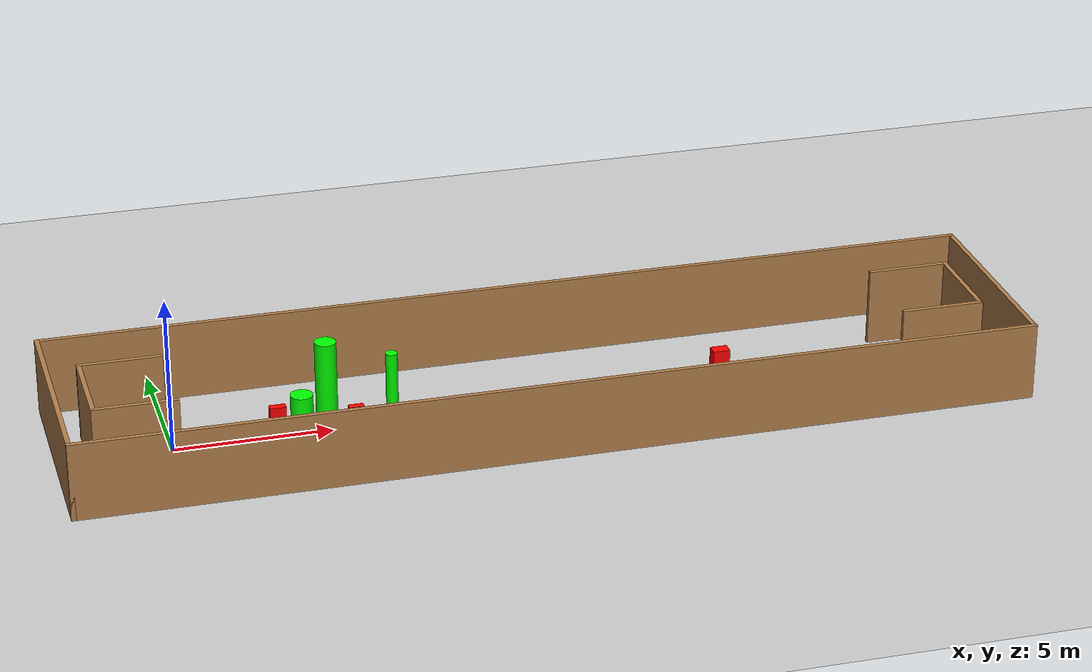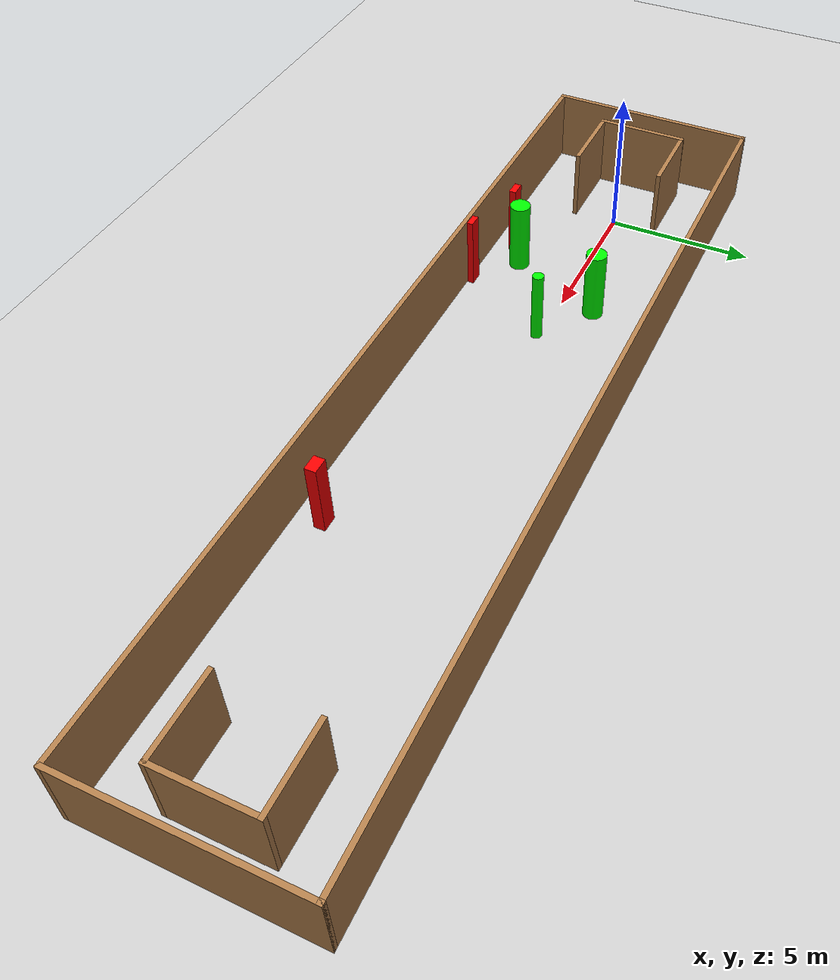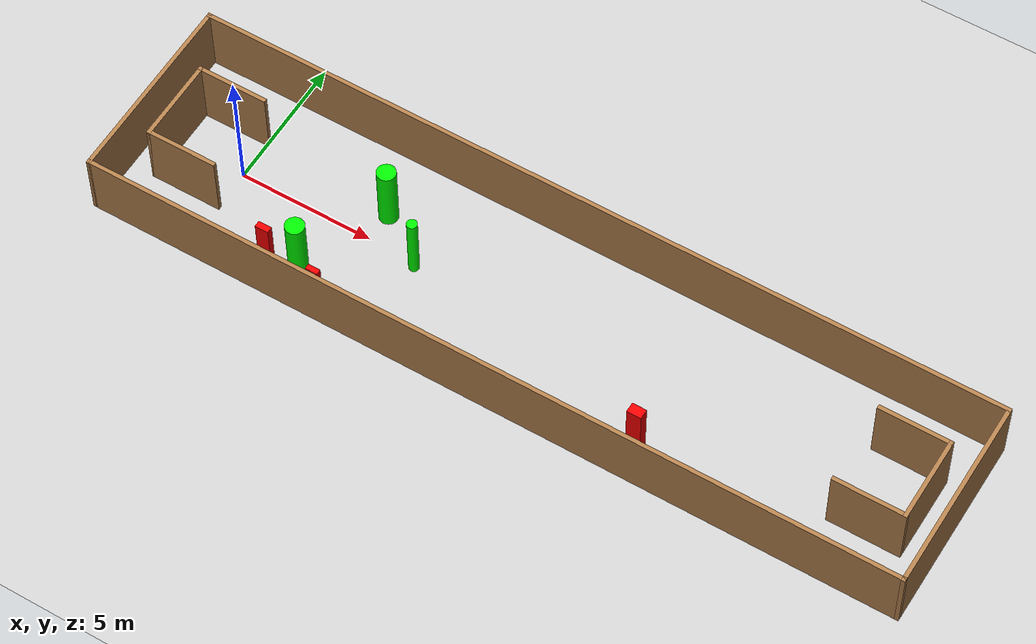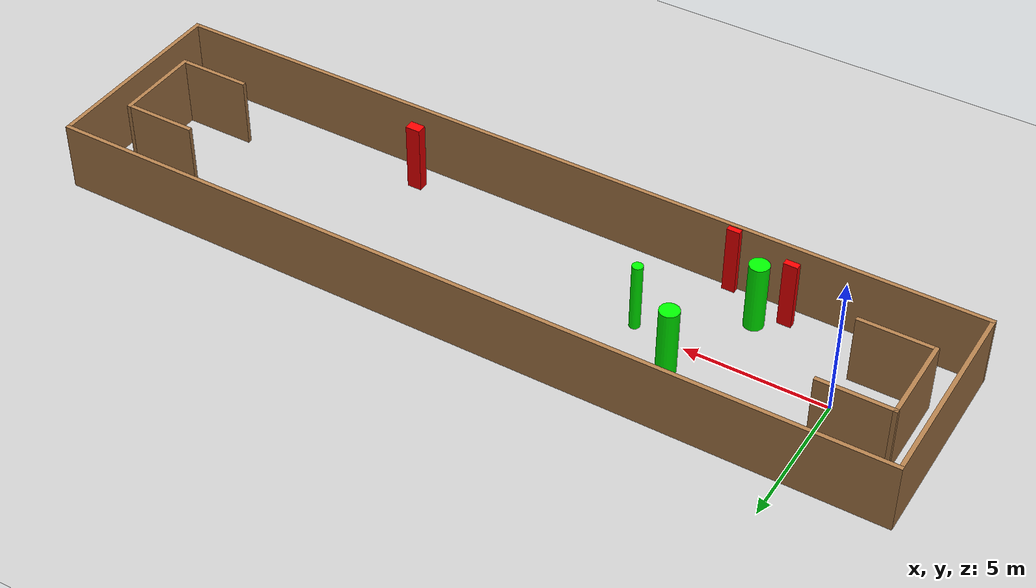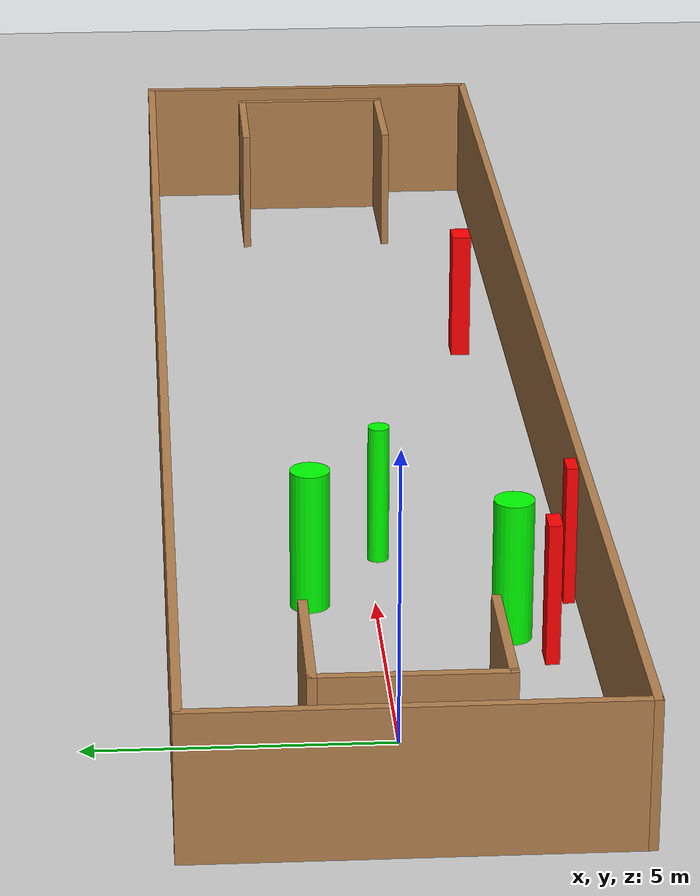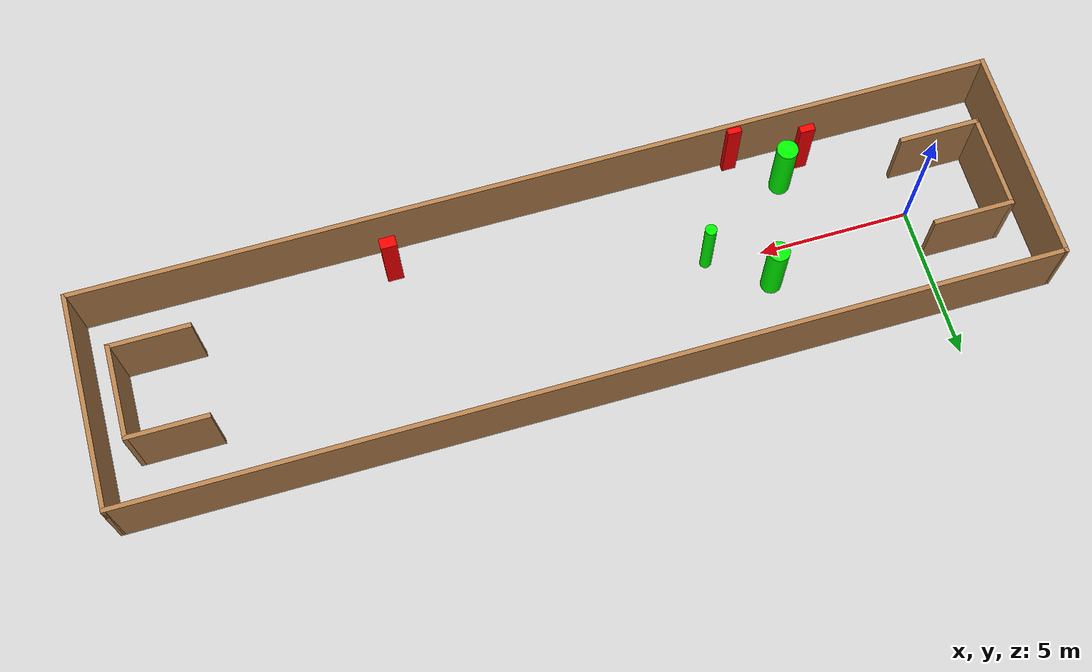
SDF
<sdf version="1.7">
 <world name="default">
  <light name="sun" type="directional">
   <pose>0 0 10 0 -0 0</pose>
   <diffuse>0.8 0.8 0.8 1</diffuse>
   <specular>0.2 0.2 0.2 1</specular>
   <attenuation>
    <range>1000</range>
    <constant>0.9</constant>
    <linear>0.01</linear>
    <quadratic>0.001</quadratic>
   </attenuation>
   <direction>-0.5 0.1 -0.9</direction>
   <spot><inner_angle>0</inner_angle><outer_angle>0</outer_angle><falloff>0</falloff></spot>
  </light>
  <model name="ground_plane">
   <static>1</static>
   <link name="link">
    <collision name="collision">
     <geometry><plane><normal>0 0 1</normal><size>100 100</size></plane></geometry>
     <surface>
      <contact><collide_bitmask>65535</collide_bitmask></contact>
      <friction><ode><mu>100</mu><mu2>50</mu2></ode></friction>
     </surface>
    </collision>
    <visual name="visual">
     <cast_shadows>0</cast_shadows>
     <geometry><plane><normal>0 0 1</normal><size>100 100</size></plane></geometry>
     <material>
      <script><uri>file://media/materials/scripts/gazebo.material</uri><name>Gazebo/Grey</name></script>
     </material>
    </visual>
   </link>
  </model>
  <gravity>0 0 -9.8</gravity>
  <magnetic_field>6e-06 2.3e-05 -4.2e-05</magnetic_field>
  <atmosphere type="adiabatic"/>
  <physics type="ode">
   <max_step_size>0.001</max_step_size>
   <real_time_factor>1</real_time_factor>
   <real_time_update_rate>1000</real_time_update_rate>
  </physics>
  <scene><ambient>0.4 0.4 0.4 1</ambient><background>0.7 0.7 0.7 1</background><shadows>1</shadows></scene>
  <spherical_coordinates>
   <surface_model>EARTH_WGS84</surface_model>
   <latitude_deg>0</latitude_deg>
   <longitude_deg>0</longitude_deg>
   <elevation>0</elevation>
   <heading_deg>0</heading_deg>
  </spherical_coordinates>
  <model name="my_base_walls">
   <link name="Wall_0">
    <collision name="Wall_0_Collision">
     <geometry><box><size>7.15 0.15 2.5</size></box></geometry>
     <pose>0 0 1.25 0 -0 0</pose>
    </collision>
    <visual name="Wall_0_Visual">
     <pose>0 0 1.25 0 -0 0</pose>
     <geometry><box><size>7.15 0.15 2.5</size></box></geometry>
     <material>
      <script><uri>file://media/materials/scripts/gazebo.material</uri><name>Gazebo/Wood</name></script>
      <ambient>1 1 1 1</ambient>
     </material>
     <meta><layer>0</layer></meta>
    </visual>
    <pose>-15 0 0 0 -0 1.5708</pose>
   </link>
   <link name="Wall_10">
    <collision name="Wall_10_Collision">
     <geometry><box><size>2.65 0.15 2.5</size></box></geometry>
     <pose>0 0 1.25 0 -0 0</pose>
    </collision>
    <visual name="Wall_10_Visual">
     <pose>0 0 1.25 0 -0 0</pose>
     <geometry><box><size>2.65 0.15 2.5</size></box></geometry>
     <material>
      <script><uri>file://media/materials/scripts/gazebo.material</uri><name>Gazebo/Wood</name></script>
      <ambient>1 1 1 1</ambient>
     </material>
     <meta><layer>0</layer></meta>
    </visual>
    <pose>-12.75 -1.5 0 0 -0 0</pose>
   </link>
   <link name="Wall_12">
    <collision name="Wall_12_Collision">
     <geometry><box><size>2.65 0.15 2.5</size></box></geometry>
     <pose>0 0 1.25 0 -0 0</pose>
    </collision>
    <visual name="Wall_12_Visual">
     <pose>0 0 1.25 0 -0 0</pose>
     <geometry><box><size>2.65 0.15 2.5</size></box></geometry>
     <material>
      <script><uri>file://media/materials/scripts/gazebo.material</uri><name>Gazebo/Wood</name></script>
      <ambient>1 1 1 1</ambient>
     </material>
     <meta><layer>0</layer></meta>
    </visual>
    <pose>-12.75 1.5 0 0 -0 0</pose>
   </link>
   <link name="Wall_14">
    <collision name="Wall_14_Collision">
     <geometry><box><size>3.15 0.15 2.5</size></box></geometry>
     <pose>0 0 1.25 0 -0 0</pose>
    </collision>
    <visual name="Wall_14_Visual">
     <pose>0 0 1.25 0 -0 0</pose>
     <geometry><box><size>3.15 0.15 2.5</size></box></geometry>
     <material>
      <script><uri>file://media/materials/scripts/gazebo.material</uri><name>Gazebo/Wood</name></script>
      <ambient>1 1 1 1</ambient>
     </material>
     <meta><layer>0</layer></meta>
    </visual>
    <pose>14 0 0 0 -0 -1.5708</pose>
   </link>
   <link name="Wall_15">
    <collision name="Wall_15_Collision">
     <geometry><box><size>2.65 0.15 2.5</size></box></geometry>
     <pose>0 0 1.25 0 -0 0</pose>
    </collision>
    <visual name="Wall_15_Visual">
     <pose>0 0 1.25 0 -0 0</pose>
     <geometry><box><size>2.65 0.15 2.5</size></box></geometry>
     <material>
      <script><uri>file://media/materials/scripts/gazebo.material</uri><name>Gazebo/Wood</name></script>
      <ambient>1 1 1 1</ambient>
     </material>
     <meta><layer>0</layer></meta>
    </visual>
    <pose>12.75 -1.5 0 0 -0 3.14159</pose>
   </link>
   <link name="Wall_17">
    <collision name="Wall_17_Collision">
     <geometry><box><size>2.65 0.15 2.5</size></box></geometry>
     <pose>0 0 1.25 0 -0 0</pose>
    </collision>
    <visual name="Wall_17_Visual">
     <pose>0 0 1.25 0 -0 0</pose>
     <geometry><box><size>2.65 0.15 2.5</size></box></geometry>
     <material>
      <script><uri>file://media/materials/scripts/gazebo.material</uri><name>Gazebo/Wood</name></script>
      <ambient>1 1 1 1</ambient>
     </material>
     <meta><layer>0</layer></meta>
    </visual>
    <pose>12.75 1.5 0 0 -0 3.14159</pose>
   </link>
   <link name="Wall_2">
    <collision name="Wall_2_Collision">
     <geometry><box><size>30.15 0.15 2.5</size></box></geometry>
     <pose>0 0 1.25 0 -0 0</pose>
    </collision>
    <visual name="Wall_2_Visual">
     <pose>0 0 1.25 0 -0 0</pose>
     <geometry><box><size>30.15 0.15 2.5</size></box></geometry>
     <material>
      <script><uri>file://media/materials/scripts/gazebo.material</uri><name>Gazebo/Wood</name></script>
      <ambient>1 1 1 1</ambient>
     </material>
     <meta><layer>0</layer></meta>
    </visual>
    <pose>-0 -3.5 0 0 -0 0</pose>
   </link>
   <link name="Wall_4">
    <collision name="Wall_4_Collision">
     <geometry><box><size>30.15 0.15 2.5</size></box></geometry>
     <pose>0 0 1.25 0 -0 0</pose>
    </collision>
    <visual name="Wall_4_Visual">
     <pose>0 0 1.25 0 -0 0</pose>
     <geometry><box><size>30.15 0.15 2.5</size></box></geometry>
     <material>
      <script><uri>file://media/materials/scripts/gazebo.material</uri><name>Gazebo/Wood</name></script>
      <ambient>1 1 1 1</ambient>
     </material>
     <meta><layer>0</layer></meta>
    </visual>
    <pose>-0 3.5 0 0 -0 0</pose>
   </link>
   <link name="Wall_6">
    <collision name="Wall_6_Collision">
     <geometry><box><size>7.15 0.15 2.5</size></box></geometry>
     <pose>0 0 1.25 0 -0 0</pose>
    </collision>
    <visual name="Wall_6_Visual">
     <pose>0 0 1.25 0 -0 0</pose>
     <geometry><box><size>7.15 0.15 2.5</size></box></geometry>
     <material>
      <script><uri>file://media/materials/scripts/gazebo.material</uri><name>Gazebo/Wood</name></script>
      <ambient>1 1 1 1</ambient>
     </material>
     <meta><layer>0</layer></meta>
    </visual>
    <pose>15 0 0 0 -0 -1.5708</pose>
   </link>
   <link name="Wall_9">
    <collision name="Wall_9_Collision">
     <geometry><box><size>3.15 0.15 2.5</size></box></geometry>
     <pose>0 0 1.25 0 -0 0</pose>
    </collision>
    <visual name="Wall_9_Visual">
     <pose>0 0 1.25 0 -0 0</pose>
     <geometry><box><size>3.15 0.15 2.5</size></box></geometry>
     <material>
      <script><uri>file://media/materials/scripts/gazebo.material</uri><name>Gazebo/Wood</name></script>
      <ambient>1 1 1 1</ambient>
     </material>
     <meta><layer>0</layer></meta>
    </visual>
    <pose>-14 0 0 0 -0 -1.5708</pose>
   </link>
   <static>1</static>
   <pose>11.5 0 0 0 -0 0</pose>
  </model>
  <model name="cylinder1">
   <static>1</static>
   <link name="link">
    <inertial>
     <mass>1</mass>
     <inertia><ixx>0.5</ixx><ixy>0</ixy><ixz>0</ixz><iyy>0.5</iyy><iyz>0</iyz><izz>1</izz></inertia>
    </inertial>
    <collision name="collision">
     <geometry><cylinder><radius>0.3429409112999243</radius><length>2.5</length></cylinder></geometry>
    </collision>
    <visual name="visual">
     <geometry><cylinder><radius>0.3429409112999243</radius><length>2.5</length></cylinder></geometry>
     <material>
      <ambient>0 1 0 1</ambient>
      <diffuse>0 1 0 1</diffuse>
      <specular>0.1 0.1 0.1 1</specular>
      <emissive>0 0 0 0</emissive>
     </material>
    </visual>
   </link>
   <pose>3.6261178270996055 -2.1797979657105224 1.25 0 0 0</pose>
  </model>
  <model name="cylinder2">
   <static>1</static>
   <link name="link">
    <inertial>
     <mass>1</mass>
     <inertia><ixx>0.5</ixx><ixy>0</ixy><ixz>0</ixz><iyy>0.5</iyy><iyz>0</iyz><izz>1</izz></inertia>
    </inertial>
    <collision name="collision">
     <geometry><cylinder><radius>0.34099584268701877</radius><length>2.5</length></cylinder></geometry>
    </collision>
    <visual name="visual">
     <geometry><cylinder><radius>0.34099584268701877</radius><length>2.5</length></cylinder></geometry>
     <material>
      <ambient>0 1 0 1</ambient>
      <diffuse>0 1 0 1</diffuse>
      <specular>0.1 0.1 0.1 1</specular>
      <emissive>0 0 0 0</emissive>
     </material>
    </visual>
   </link>
   <pose>5.028257508570265 1.1135658950887173 1.25 0 0 0</pose>
  </model>
  <model name="cylinder3">
   <static>1</static>
   <link name="link">
    <inertial>
     <mass>1</mass>
     <inertia><ixx>0.5</ixx><ixy>0</ixy><ixz>0</ixz><iyy>0.5</iyy><iyz>0</iyz><izz>1</izz></inertia>
    </inertial>
    <collision name="collision">
     <geometry><cylinder><radius>0.18752945365165674</radius><length>2.5</length></cylinder></geometry>
    </collision>
    <visual name="visual">
     <geometry><cylinder><radius>0.18752945365165674</radius><length>2.5</length></cylinder></geometry>
     <material>
      <ambient>0 1 0 1</ambient>
      <diffuse>0 1 0 1</diffuse>
      <specular>0.1 0.1 0.1 1</specular>
      <emissive>0 0 0 0</emissive>
     </material>
    </visual>
   </link>
   <pose>6.8232981071938195 -0.1751043918840285 1.25 0 0 0</pose>
  </model>
  <model name="box1">
   <static>1</static>
   <link name="link">
    <inertial>
     <mass>1</mass>
     <inertia><ixx>0.083</ixx><ixy>0</ixy><ixz>0</ixz><iyy>0.083</iyy><iyz>0</iyz><izz>0.083</izz></inertia>
    </inertial>
    <collision name="collision">
     <geometry><box><size>0.49164290217431406 0.2347607819854911 2.5</size></box></geometry>
    </collision>
    <visual name="visual">
     <geometry><box><size>0.49164290217431406 0.2347607819854911 2.5</size></box></geometry>
     <material>
      <ambient>1 0 0 1</ambient>
      <diffuse>1 0 0 1</diffuse>
      <specular>0.1 0.1 0.1 1</specular>
      <emissive>0 0 0 0</emissive>
     </material>
    </visual>
    <sensor name="my_contact" type="contact">
     <contact><collision>box_collision</collision><topic>__default_topic__</topic></contact>
    </sensor>
   </link>
   <pose>2.787743732888087 -2.7389089880273927 1.25 0 0 0</pose>
  </model>
  <model name="box2">
   <static>1</static>
   <link name="link">
    <inertial>
     <mass>1</mass>
     <inertia><ixx>0.083</ixx><ixy>0</ixy><ixz>0</ixz><iyy>0.083</iyy><iyz>0</iyz><izz>0.083</izz></inertia>
    </inertial>
    <collision name="collision">
     <geometry><box><size>0.5236280716222333 0.36347488510941117 2.5</size></box></geometry>
    </collision>
    <visual name="visual">
     <geometry><box><size>0.5236280716222333 0.36347488510941117 2.5</size></box></geometry>
     <material>
      <ambient>1 0 0 1</ambient>
      <diffuse>1 0 0 1</diffuse>
      <specular>0.1 0.1 0.1 1</specular>
      <emissive>0 0 0 0</emissive>
     </material>
    </visual>
    <sensor name="my_contact" type="contact">
     <contact><collision>box_collision</collision><topic>__default_topic__</topic></contact>
    </sensor>
   </link>
   <pose>16.573746441762708 -2.5270979181028963 1.25 0 0 0</pose>
  </model>
  <model name="box3">
   <static>1</static>
   <link name="link">
    <inertial>
     <mass>1</mass>
     <inertia><ixx>0.083</ixx><ixy>0</ixy><ixz>0</ixz><iyy>0.083</iyy><iyz>0</iyz><izz>0.083</izz></inertia>
    </inertial>
    <collision name="collision">
     <geometry><box><size>0.4562786307640146 0.2009750898205077 2.5</size></box></geometry>
    </collision>
    <visual name="visual">
     <geometry><box><size>0.4562786307640146 0.2009750898205077 2.5</size></box></geometry>
     <material>
      <ambient>1 0 0 1</ambient>
      <diffuse>1 0 0 1</diffuse>
      <specular>0.1 0.1 0.1 1</specular>
      <emissive>0 0 0 0</emissive>
     </material>
    </visual>
    <sensor name="my_contact" type="contact">
     <contact><collision>box_collision</collision><topic>__default_topic__</topic></contact>
    </sensor>
   </link>
   <pose>5.04253123134769 -3.2933503288276857 1.25 0 0 0</pose>
  </model>
 </world>
</sdf>
